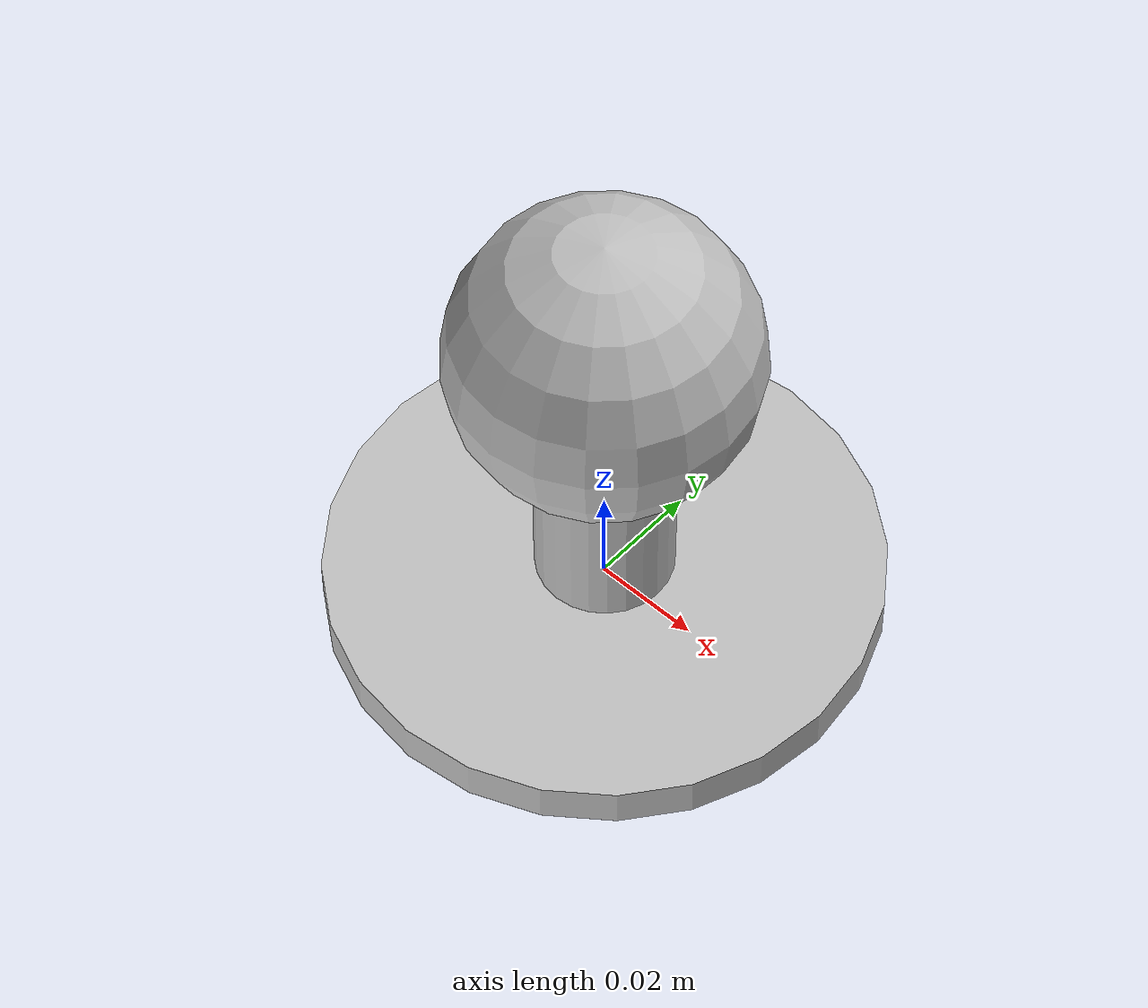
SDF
<?xml version="1.0"?>
<sdf version="1.9">
  <model name="ball_mount">
    <static>true</static>
    <link name="base_link">
      <!-- Circular mounting plate -->
      <visual name="plate_visual">
        <geometry>
          <cylinder>
            <radius>0.05</radius>
            <length>0.008</length>
          </cylinder>
        </geometry>
        <material>
          <ambient>0.75 0.75 0.75 1.0</ambient>  <!-- Light silver color -->
          <diffuse>0.75 0.75 0.75 1.0</diffuse>  <!-- Light silver -->
          <specular>1.0 1.0 1.0 1.0</specular>  <!-- High specular for shininess -->
        </material>
      </visual>

      <!-- Cylindrical neck -->
      <visual name="neck_visual">
        <pose>0 0 0.035 0 0 0</pose>
        <geometry>
          <cylinder>
            <radius>0.0125</radius>
            <length>0.08</length>
          </cylinder>
        </geometry>
        <material>
          <ambient>0.75 0.75 0.75 1.0</ambient>  <!-- Light silver color -->
          <diffuse>0.75 0.75 0.75 1.0</diffuse>  <!-- Light silver -->
          <specular>1.0 1.0 1.0 1.0</specular>  <!-- High specular for shininess -->
        </material>
      </visual>

      <!-- Hemispherical ball -->
      <visual name="ball_visual">
        <pose>0 0 0.06 0 0 0</pose>
        <geometry>
          <sphere>
            <radius>0.0275</radius>
          </sphere>
        </geometry>
        <material>
          <ambient>0.75 0.75 0.75 1.0</ambient>  <!-- Light silver color -->
          <diffuse>0.75 0.75 0.75 1.0</diffuse>  <!-- Light silver -->
          <specular>1.0 1.0 1.0 1.0</specular>  <!-- High specular for shininess -->
        </material>
      </visual>
    </link>
  </model>
</sdf>
